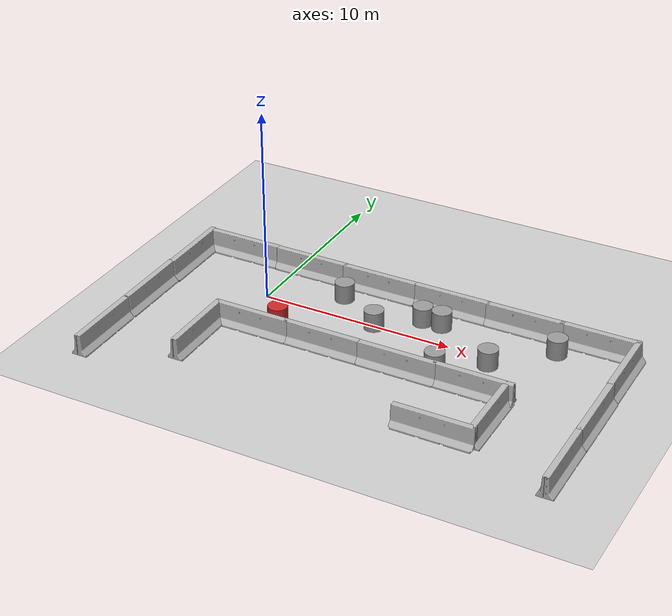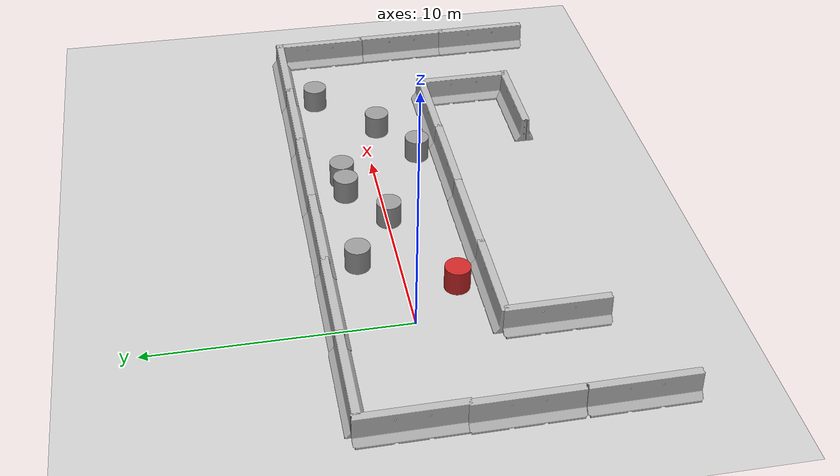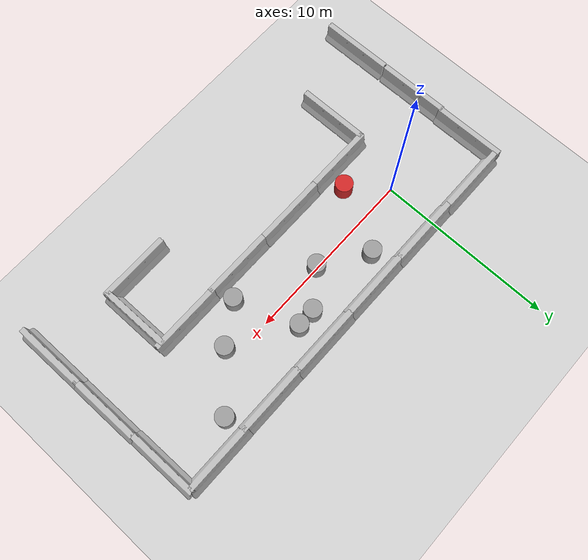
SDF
<sdf version="1.7">
 <world name="default">
  <model name="ground_plane">
   <static>1</static>
   <link name="link">
    <collision name="collision">
     <geometry><plane><normal>0 0 1</normal><size>100 100</size></plane></geometry>
     <surface><friction><ode><mu>100</mu><mu2>50</mu2></ode></friction></surface>
    </collision>
    <visual name="visual">
     <cast_shadows>0</cast_shadows>
     <geometry><plane><normal>0 0 1</normal><size>100 100</size></plane></geometry>
     <material>
      <script><uri>file://media/materials/scripts/gazebo.material</uri><name>Gazebo/Grey</name></script>
     </material>
    </visual>
   </link>
  </model>
  <model name="jersey_barrier">
   <static>1</static>
   <link name="link">
    <visual name="visual">
     <geometry><mesh><uri>model://jersey_barrier/meshes/jersey_barrier.dae</uri></mesh></geometry>
    </visual>
    <collision name="upright">
     <pose>0 0 0.5715 0 -0 0</pose>
     <geometry><box><size>4.06542 0.3063 1.143</size></box></geometry>
    </collision>
    <collision name="base">
     <pose>0 0 0.032258 0 -0 0</pose>
     <geometry><box><size>4.06542 0.8107 0.064516</size></box></geometry>
    </collision>
    <collision name="base2">
     <pose>0 0 0.1 0 -0 0</pose>
     <geometry><box><size>4.06542 0.65 0.1</size></box></geometry>
    </collision>
    <collision name="base3">
     <pose>0 0 0.2 0 -0 0</pose>
     <geometry><box><size>4.06542 0.5 0.1</size></box></geometry>
    </collision>
    <collision name="left-angle">
     <pose>0 -0.224 0.2401 0.9 -0 0</pose>
     <geometry><box><size>4.06542 0.5 0.064516</size></box></geometry>
    </collision>
    <collision name="right-angle">
     <pose>0 0.224 0.2401 -0.9 0 0</pose>
     <geometry><box><size>4.06542 0.5 0.064516</size></box></geometry>
    </collision>
   </link>
   <pose>0.961979 -3.04633 0 0 -0 0</pose>
  </model>
  <model name="jersey_barrier_clone">
   <static>1</static>
   <link name="link">
    <visual name="visual">
     <geometry><mesh><uri>model://jersey_barrier/meshes/jersey_barrier.dae</uri></mesh></geometry>
    </visual>
    <collision name="upright">
     <pose>0 0 0.5715 0 -0 0</pose>
     <geometry><box><size>4.06542 0.3063 1.143</size></box></geometry>
    </collision>
    <collision name="base">
     <pose>0 0 0.032258 0 -0 0</pose>
     <geometry><box><size>4.06542 0.8107 0.064516</size></box></geometry>
    </collision>
    <collision name="base2">
     <pose>0 0 0.1 0 -0 0</pose>
     <geometry><box><size>4.06542 0.65 0.1</size></box></geometry>
    </collision>
    <collision name="base3">
     <pose>0 0 0.2 0 -0 0</pose>
     <geometry><box><size>4.06542 0.5 0.1</size></box></geometry>
    </collision>
    <collision name="left-angle">
     <pose>0 -0.224 0.2401 0.9 -0 0</pose>
     <geometry><box><size>4.06542 0.5 0.064516</size></box></geometry>
    </collision>
    <collision name="right-angle">
     <pose>0 0.224 0.2401 -0.9 0 0</pose>
     <geometry><box><size>4.06542 0.5 0.064516</size></box></geometry>
    </collision>
   </link>
   <pose>0.967551 2.93921 0 0 -0 0</pose>
  </model>
  <model name="jersey_barrier_clone_0">
   <static>1</static>
   <link name="link">
    <visual name="visual">
     <geometry><mesh><uri>model://jersey_barrier/meshes/jersey_barrier.dae</uri></mesh></geometry>
    </visual>
    <collision name="upright">
     <pose>0 0 0.5715 0 -0 0</pose>
     <geometry><box><size>4.06542 0.3063 1.143</size></box></geometry>
    </collision>
    <collision name="base">
     <pose>0 0 0.032258 0 -0 0</pose>
     <geometry><box><size>4.06542 0.8107 0.064516</size></box></geometry>
    </collision>
    <collision name="base2">
     <pose>0 0 0.1 0 -0 0</pose>
     <geometry><box><size>4.06542 0.65 0.1</size></box></geometry>
    </collision>
    <collision name="base3">
     <pose>0 0 0.2 0 -0 0</pose>
     <geometry><box><size>4.06542 0.5 0.1</size></box></geometry>
    </collision>
    <collision name="left-angle">
     <pose>0 -0.224 0.2401 0.9 -0 0</pose>
     <geometry><box><size>4.06542 0.5 0.064516</size></box></geometry>
    </collision>
    <collision name="right-angle">
     <pose>0 0.224 0.2401 -0.9 0 0</pose>
     <geometry><box><size>4.06542 0.5 0.064516</size></box></geometry>
    </collision>
   </link>
   <pose>4.82459 2.91753 0 0 -0 0</pose>
  </model>
  <model name="jersey_barrier_clone_1">
   <static>1</static>
   <link name="link">
    <visual name="visual">
     <geometry><mesh><uri>model://jersey_barrier/meshes/jersey_barrier.dae</uri></mesh></geometry>
    </visual>
    <collision name="upright">
     <pose>0 0 0.5715 0 -0 0</pose>
     <geometry><box><size>4.06542 0.3063 1.143</size></box></geometry>
    </collision>
    <collision name="base">
     <pose>0 0 0.032258 0 -0 0</pose>
     <geometry><box><size>4.06542 0.8107 0.064516</size></box></geometry>
    </collision>
    <collision name="base2">
     <pose>0 0 0.1 0 -0 0</pose>
     <geometry><box><size>4.06542 0.65 0.1</size></box></geometry>
    </collision>
    <collision name="base3">
     <pose>0 0 0.2 0 -0 0</pose>
     <geometry><box><size>4.06542 0.5 0.1</size></box></geometry>
    </collision>
    <collision name="left-angle">
     <pose>0 -0.224 0.2401 0.9 -0 0</pose>
     <geometry><box><size>4.06542 0.5 0.064516</size></box></geometry>
    </collision>
    <collision name="right-angle">
     <pose>0 0.224 0.2401 -0.9 0 0</pose>
     <geometry><box><size>4.06542 0.5 0.064516</size></box></geometry>
    </collision>
   </link>
   <pose>4.81555 -3.02808 0 0 -0 0</pose>
  </model>
  <model name="jersey_barrier_clone_2">
   <static>1</static>
   <link name="link">
    <visual name="visual">
     <geometry><mesh><uri>model://jersey_barrier/meshes/jersey_barrier.dae</uri></mesh></geometry>
    </visual>
    <collision name="upright">
     <pose>0 0 0.5715 0 -0 0</pose>
     <geometry><box><size>4.06542 0.3063 1.143</size></box></geometry>
    </collision>
    <collision name="base">
     <pose>0 0 0.032258 0 -0 0</pose>
     <geometry><box><size>4.06542 0.8107 0.064516</size></box></geometry>
    </collision>
    <collision name="base2">
     <pose>0 0 0.1 0 -0 0</pose>
     <geometry><box><size>4.06542 0.65 0.1</size></box></geometry>
    </collision>
    <collision name="base3">
     <pose>0 0 0.2 0 -0 0</pose>
     <geometry><box><size>4.06542 0.5 0.1</size></box></geometry>
    </collision>
    <collision name="left-angle">
     <pose>0 -0.224 0.2401 0.9 -0 0</pose>
     <geometry><box><size>4.06542 0.5 0.064516</size></box></geometry>
    </collision>
    <collision name="right-angle">
     <pose>0 0.224 0.2401 -0.9 0 0</pose>
     <geometry><box><size>4.06542 0.5 0.064516</size></box></geometry>
    </collision>
   </link>
   <pose>8.7951 -3.03853 0 0 -0 0</pose>
  </model>
  <model name="jersey_barrier_clone_3">
   <static>1</static>
   <link name="link">
    <visual name="visual">
     <geometry><mesh><uri>model://jersey_barrier/meshes/jersey_barrier.dae</uri></mesh></geometry>
    </visual>
    <collision name="upright">
     <pose>0 0 0.5715 0 -0 0</pose>
     <geometry><box><size>4.06542 0.3063 1.143</size></box></geometry>
    </collision>
    <collision name="base">
     <pose>0 0 0.032258 0 -0 0</pose>
     <geometry><box><size>4.06542 0.8107 0.064516</size></box></geometry>
    </collision>
    <collision name="base2">
     <pose>0 0 0.1 0 -0 0</pose>
     <geometry><box><size>4.06542 0.65 0.1</size></box></geometry>
    </collision>
    <collision name="base3">
     <pose>0 0 0.2 0 -0 0</pose>
     <geometry><box><size>4.06542 0.5 0.1</size></box></geometry>
    </collision>
    <collision name="left-angle">
     <pose>0 -0.224 0.2401 0.9 -0 0</pose>
     <geometry><box><size>4.06542 0.5 0.064516</size></box></geometry>
    </collision>
    <collision name="right-angle">
     <pose>0 0.224 0.2401 -0.9 0 0</pose>
     <geometry><box><size>4.06542 0.5 0.064516</size></box></geometry>
    </collision>
   </link>
   <pose>8.79888 2.92982 0 0 -0 0</pose>
  </model>
  <model name="jersey_barrier_clone_4">
   <static>1</static>
   <link name="link">
    <visual name="visual">
     <geometry><mesh><uri>model://jersey_barrier/meshes/jersey_barrier.dae</uri></mesh></geometry>
    </visual>
    <collision name="upright">
     <pose>0 0 0.5715 0 -0 0</pose>
     <geometry><box><size>4.06542 0.3063 1.143</size></box></geometry>
    </collision>
    <collision name="base">
     <pose>0 0 0.032258 0 -0 0</pose>
     <geometry><box><size>4.06542 0.8107 0.064516</size></box></geometry>
    </collision>
    <collision name="base2">
     <pose>0 0 0.1 0 -0 0</pose>
     <geometry><box><size>4.06542 0.65 0.1</size></box></geometry>
    </collision>
    <collision name="base3">
     <pose>0 0 0.2 0 -0 0</pose>
     <geometry><box><size>4.06542 0.5 0.1</size></box></geometry>
    </collision>
    <collision name="left-angle">
     <pose>0 -0.224 0.2401 0.9 -0 0</pose>
     <geometry><box><size>4.06542 0.5 0.064516</size></box></geometry>
    </collision>
    <collision name="right-angle">
     <pose>0 0.224 0.2401 -0.9 0 0</pose>
     <geometry><box><size>4.06542 0.5 0.064516</size></box></geometry>
    </collision>
   </link>
   <pose>-3.01908 2.96805 0 0 -0 0</pose>
  </model>
  <model name="jersey_barrier_clone_5">
   <static>1</static>
   <link name="link">
    <visual name="visual">
     <geometry><mesh><uri>model://jersey_barrier/meshes/jersey_barrier.dae</uri></mesh></geometry>
    </visual>
    <collision name="upright">
     <pose>0 0 0.5715 0 -0 0</pose>
     <geometry><box><size>4.06542 0.3063 1.143</size></box></geometry>
    </collision>
    <collision name="base">
     <pose>0 0 0.032258 0 -0 0</pose>
     <geometry><box><size>4.06542 0.8107 0.064516</size></box></geometry>
    </collision>
    <collision name="base2">
     <pose>0 0 0.1 0 -0 0</pose>
     <geometry><box><size>4.06542 0.65 0.1</size></box></geometry>
    </collision>
    <collision name="base3">
     <pose>0 0 0.2 0 -0 0</pose>
     <geometry><box><size>4.06542 0.5 0.1</size></box></geometry>
    </collision>
    <collision name="left-angle">
     <pose>0 -0.224 0.2401 0.9 -0 0</pose>
     <geometry><box><size>4.06542 0.5 0.064516</size></box></geometry>
    </collision>
    <collision name="right-angle">
     <pose>0 0.224 0.2401 -0.9 0 0</pose>
     <geometry><box><size>4.06542 0.5 0.064516</size></box></geometry>
    </collision>
   </link>
   <pose>-5.09144 1.13945 0 0 -0 1.58011</pose>
  </model>
  <model name="jersey_barrier_clone_5_clone">
   <static>1</static>
   <link name="link">
    <visual name="visual">
     <geometry><mesh><uri>model://jersey_barrier/meshes/jersey_barrier.dae</uri></mesh></geometry>
    </visual>
    <collision name="upright">
     <pose>0 0 0.5715 0 -0 0</pose>
     <geometry><box><size>4.06542 0.3063 1.143</size></box></geometry>
    </collision>
    <collision name="base">
     <pose>0 0 0.032258 0 -0 0</pose>
     <geometry><box><size>4.06542 0.8107 0.064516</size></box></geometry>
    </collision>
    <collision name="base2">
     <pose>0 0 0.1 0 -0 0</pose>
     <geometry><box><size>4.06542 0.65 0.1</size></box></geometry>
    </collision>
    <collision name="base3">
     <pose>0 0 0.2 0 -0 0</pose>
     <geometry><box><size>4.06542 0.5 0.1</size></box></geometry>
    </collision>
    <collision name="left-angle">
     <pose>0 -0.224 0.2401 0.9 -0 0</pose>
     <geometry><box><size>4.06542 0.5 0.064516</size></box></geometry>
    </collision>
    <collision name="right-angle">
     <pose>0 0.224 0.2401 -0.9 0 0</pose>
     <geometry><box><size>4.06542 0.5 0.064516</size></box></geometry>
    </collision>
   </link>
   <pose>-5.11044 -2.76569 0 0 -0 1.58011</pose>
  </model>
  <model name="jersey_barrier_clone_5_clone_0">
   <static>1</static>
   <link name="link">
    <visual name="visual">
     <geometry><mesh><uri>model://jersey_barrier/meshes/jersey_barrier.dae</uri></mesh></geometry>
    </visual>
    <collision name="upright">
     <pose>0 0 0.5715 0 -0 0</pose>
     <geometry><box><size>4.06542 0.3063 1.143</size></box></geometry>
    </collision>
    <collision name="base">
     <pose>0 0 0.032258 0 -0 0</pose>
     <geometry><box><size>4.06542 0.8107 0.064516</size></box></geometry>
    </collision>
    <collision name="base2">
     <pose>0 0 0.1 0 -0 0</pose>
     <geometry><box><size>4.06542 0.65 0.1</size></box></geometry>
    </collision>
    <collision name="base3">
     <pose>0 0 0.2 0 -0 0</pose>
     <geometry><box><size>4.06542 0.5 0.1</size></box></geometry>
    </collision>
    <collision name="left-angle">
     <pose>0 -0.224 0.2401 0.9 -0 0</pose>
     <geometry><box><size>4.06542 0.5 0.064516</size></box></geometry>
    </collision>
    <collision name="right-angle">
     <pose>0 0.224 0.2401 -0.9 0 0</pose>
     <geometry><box><size>4.06542 0.5 0.064516</size></box></geometry>
    </collision>
   </link>
   <pose>-0.916809 -4.99629 0 0 -0 1.58011</pose>
  </model>
  <model name="jersey_barrier_clone_5_clone_1">
   <static>1</static>
   <link name="link">
    <visual name="visual">
     <geometry><mesh><uri>model://jersey_barrier/meshes/jersey_barrier.dae</uri></mesh></geometry>
    </visual>
    <collision name="upright">
     <pose>0 0 0.5715 0 -0 0</pose>
     <geometry><box><size>4.06542 0.3063 1.143</size></box></geometry>
    </collision>
    <collision name="base">
     <pose>0 0 0.032258 0 -0 0</pose>
     <geometry><box><size>4.06542 0.8107 0.064516</size></box></geometry>
    </collision>
    <collision name="base2">
     <pose>0 0 0.1 0 -0 0</pose>
     <geometry><box><size>4.06542 0.65 0.1</size></box></geometry>
    </collision>
    <collision name="base3">
     <pose>0 0 0.2 0 -0 0</pose>
     <geometry><box><size>4.06542 0.5 0.1</size></box></geometry>
    </collision>
    <collision name="left-angle">
     <pose>0 -0.224 0.2401 0.9 -0 0</pose>
     <geometry><box><size>4.06542 0.5 0.064516</size></box></geometry>
    </collision>
    <collision name="right-angle">
     <pose>0 0.224 0.2401 -0.9 0 0</pose>
     <geometry><box><size>4.06542 0.5 0.064516</size></box></geometry>
    </collision>
   </link>
   <pose>-5.07736 -6.85256 0 0 -0 1.58011</pose>
  </model>
  <model name="jersey_barrier_clone_13">
   <static>1</static>
   <link name="link">
    <visual name="visual">
     <geometry><mesh><uri>model://jersey_barrier/meshes/jersey_barrier.dae</uri></mesh></geometry>
    </visual>
    <collision name="upright">
     <pose>0 0 0.5715 0 -0 0</pose>
     <geometry><box><size>4.06542 0.3063 1.143</size></box></geometry>
    </collision>
    <collision name="base">
     <pose>0 0 0.032258 0 -0 0</pose>
     <geometry><box><size>4.06542 0.8107 0.064516</size></box></geometry>
    </collision>
    <collision name="base2">
     <pose>0 0 0.1 0 -0 0</pose>
     <geometry><box><size>4.06542 0.65 0.1</size></box></geometry>
    </collision>
    <collision name="base3">
     <pose>0 0 0.2 0 -0 0</pose>
     <geometry><box><size>4.06542 0.5 0.1</size></box></geometry>
    </collision>
    <collision name="left-angle">
     <pose>0 -0.224 0.2401 0.9 -0 0</pose>
     <geometry><box><size>4.06542 0.5 0.064516</size></box></geometry>
    </collision>
    <collision name="right-angle">
     <pose>0 0.224 0.2401 -0.9 0 0</pose>
     <geometry><box><size>4.06542 0.5 0.064516</size></box></geometry>
    </collision>
   </link>
   <pose>12.6356 -3.0156 0 0 -0 0</pose>
  </model>
  <model name="jersey_barrier_clone_14">
   <static>1</static>
   <link name="link">
    <visual name="visual">
     <geometry><mesh><uri>model://jersey_barrier/meshes/jersey_barrier.dae</uri></mesh></geometry>
    </visual>
    <collision name="upright">
     <pose>0 0 0.5715 0 -0 0</pose>
     <geometry><box><size>4.06542 0.3063 1.143</size></box></geometry>
    </collision>
    <collision name="base">
     <pose>0 0 0.032258 0 -0 0</pose>
     <geometry><box><size>4.06542 0.8107 0.064516</size></box></geometry>
    </collision>
    <collision name="base2">
     <pose>0 0 0.1 0 -0 0</pose>
     <geometry><box><size>4.06542 0.65 0.1</size></box></geometry>
    </collision>
    <collision name="base3">
     <pose>0 0 0.2 0 -0 0</pose>
     <geometry><box><size>4.06542 0.5 0.1</size></box></geometry>
    </collision>
    <collision name="left-angle">
     <pose>0 -0.224 0.2401 0.9 -0 0</pose>
     <geometry><box><size>4.06542 0.5 0.064516</size></box></geometry>
    </collision>
    <collision name="right-angle">
     <pose>0 0.224 0.2401 -0.9 0 0</pose>
     <geometry><box><size>4.06542 0.5 0.064516</size></box></geometry>
    </collision>
   </link>
   <pose>12.6866 2.91624 0 0 -0 0</pose>
  </model>
  <model name="jersey_barrier_clone_15">
   <static>1</static>
   <link name="link">
    <visual name="visual">
     <geometry><mesh><uri>model://jersey_barrier/meshes/jersey_barrier.dae</uri></mesh></geometry>
    </visual>
    <collision name="upright">
     <pose>0 0 0.5715 0 -0 0</pose>
     <geometry><box><size>4.06542 0.3063 1.143</size></box></geometry>
    </collision>
    <collision name="base">
     <pose>0 0 0.032258 0 -0 0</pose>
     <geometry><box><size>4.06542 0.8107 0.064516</size></box></geometry>
    </collision>
    <collision name="base2">
     <pose>0 0 0.1 0 -0 0</pose>
     <geometry><box><size>4.06542 0.65 0.1</size></box></geometry>
    </collision>
    <collision name="base3">
     <pose>0 0 0.2 0 -0 0</pose>
     <geometry><box><size>4.06542 0.5 0.1</size></box></geometry>
    </collision>
    <collision name="left-angle">
     <pose>0 -0.224 0.2401 0.9 -0 0</pose>
     <geometry><box><size>4.06542 0.5 0.064516</size></box></geometry>
    </collision>
    <collision name="right-angle">
     <pose>0 0.224 0.2401 -0.9 0 0</pose>
     <geometry><box><size>4.06542 0.5 0.064516</size></box></geometry>
    </collision>
   </link>
   <pose>12.4897 -6.82928 0 0 -0 0</pose>
  </model>
  <model name="jersey_barrier_clone_5_clone_clone">
   <static>1</static>
   <link name="link">
    <visual name="visual">
     <geometry><mesh><uri>model://jersey_barrier/meshes/jersey_barrier.dae</uri></mesh></geometry>
    </visual>
    <collision name="upright">
     <pose>0 0 0.5715 0 -0 0</pose>
     <geometry><box><size>4.06542 0.3063 1.143</size></box></geometry>
    </collision>
    <collision name="base">
     <pose>0 0 0.032258 0 -0 0</pose>
     <geometry><box><size>4.06542 0.8107 0.064516</size></box></geometry>
    </collision>
    <collision name="base2">
     <pose>0 0 0.1 0 -0 0</pose>
     <geometry><box><size>4.06542 0.65 0.1</size></box></geometry>
    </collision>
    <collision name="base3">
     <pose>0 0 0.2 0 -0 0</pose>
     <geometry><box><size>4.06542 0.5 0.1</size></box></geometry>
    </collision>
    <collision name="left-angle">
     <pose>0 -0.224 0.2401 0.9 -0 0</pose>
     <geometry><box><size>4.06542 0.5 0.064516</size></box></geometry>
    </collision>
    <collision name="right-angle">
     <pose>0 0.224 0.2401 -0.9 0 0</pose>
     <geometry><box><size>4.06542 0.5 0.064516</size></box></geometry>
    </collision>
   </link>
   <pose>14.3041 -4.91482 0 0 -0 1.58011</pose>
  </model>
  <model name="jersey_barrier_clone_13_clone">
   <static>1</static>
   <link name="link">
    <visual name="visual">
     <geometry><mesh><uri>model://jersey_barrier/meshes/jersey_barrier.dae</uri></mesh></geometry>
    </visual>
    <collision name="upright">
     <pose>0 0 0.5715 0 -0 0</pose>
     <geometry><box><size>4.06542 0.3063 1.143</size></box></geometry>
    </collision>
    <collision name="base">
     <pose>0 0 0.032258 0 -0 0</pose>
     <geometry><box><size>4.06542 0.8107 0.064516</size></box></geometry>
    </collision>
    <collision name="base2">
     <pose>0 0 0.1 0 -0 0</pose>
     <geometry><box><size>4.06542 0.65 0.1</size></box></geometry>
    </collision>
    <collision name="base3">
     <pose>0 0 0.2 0 -0 0</pose>
     <geometry><box><size>4.06542 0.5 0.1</size></box></geometry>
    </collision>
    <collision name="left-angle">
     <pose>0 -0.224 0.2401 0.9 -0 0</pose>
     <geometry><box><size>4.06542 0.5 0.064516</size></box></geometry>
    </collision>
    <collision name="right-angle">
     <pose>0 0.224 0.2401 -0.9 0 0</pose>
     <geometry><box><size>4.06542 0.5 0.064516</size></box></geometry>
    </collision>
   </link>
   <pose>16.4679 2.92998 0 0 -0 0</pose>
  </model>
  <model name="jersey_barrier_clone_5_clone_clone_clone">
   <static>1</static>
   <link name="link">
    <visual name="visual">
     <geometry><mesh><uri>model://jersey_barrier/meshes/jersey_barrier.dae</uri></mesh></geometry>
    </visual>
    <collision name="upright">
     <pose>0 0 0.5715 0 -0 0</pose>
     <geometry><box><size>4.06542 0.3063 1.143</size></box></geometry>
    </collision>
    <collision name="base">
     <pose>0 0 0.032258 0 -0 0</pose>
     <geometry><box><size>4.06542 0.8107 0.064516</size></box></geometry>
    </collision>
    <collision name="base2">
     <pose>0 0 0.1 0 -0 0</pose>
     <geometry><box><size>4.06542 0.65 0.1</size></box></geometry>
    </collision>
    <collision name="base3">
     <pose>0 0 0.2 0 -0 0</pose>
     <geometry><box><size>4.06542 0.5 0.1</size></box></geometry>
    </collision>
    <collision name="left-angle">
     <pose>0 -0.224 0.2401 0.9 -0 0</pose>
     <geometry><box><size>4.06542 0.5 0.064516</size></box></geometry>
    </collision>
    <collision name="right-angle">
     <pose>0 0.224 0.2401 -0.9 0 0</pose>
     <geometry><box><size>4.06542 0.5 0.064516</size></box></geometry>
    </collision>
   </link>
   <pose>18.3775 1.0886 0 0 -0 1.58011</pose>
  </model>
  <model name="jersey_barrier_clone_5_clone_clone_clone_0">
   <static>1</static>
   <link name="link">
    <visual name="visual">
     <geometry><mesh><uri>model://jersey_barrier/meshes/jersey_barrier.dae</uri></mesh></geometry>
    </visual>
    <collision name="upright">
     <pose>0 0 0.5715 0 -0 0</pose>
     <geometry><box><size>4.06542 0.3063 1.143</size></box></geometry>
    </collision>
    <collision name="base">
     <pose>0 0 0.032258 0 -0 0</pose>
     <geometry><box><size>4.06542 0.8107 0.064516</size></box></geometry>
    </collision>
    <collision name="base2">
     <pose>0 0 0.1 0 -0 0</pose>
     <geometry><box><size>4.06542 0.65 0.1</size></box></geometry>
    </collision>
    <collision name="base3">
     <pose>0 0 0.2 0 -0 0</pose>
     <geometry><box><size>4.06542 0.5 0.1</size></box></geometry>
    </collision>
    <collision name="left-angle">
     <pose>0 -0.224 0.2401 0.9 -0 0</pose>
     <geometry><box><size>4.06542 0.5 0.064516</size></box></geometry>
    </collision>
    <collision name="right-angle">
     <pose>0 0.224 0.2401 -0.9 0 0</pose>
     <geometry><box><size>4.06542 0.5 0.064516</size></box></geometry>
    </collision>
   </link>
   <pose>18.4419 -2.8308 0 0 -0 1.58011</pose>
  </model>
  <model name="jersey_barrier_clone_5_clone_clone_clone_1">
   <static>1</static>
   <link name="link">
    <visual name="visual">
     <geometry><mesh><uri>model://jersey_barrier/meshes/jersey_barrier.dae</uri></mesh></geometry>
    </visual>
    <collision name="upright">
     <pose>0 0 0.5715 0 -0 0</pose>
     <geometry><box><size>4.06542 0.3063 1.143</size></box></geometry>
    </collision>
    <collision name="base">
     <pose>0 0 0.032258 0 -0 0</pose>
     <geometry><box><size>4.06542 0.8107 0.064516</size></box></geometry>
    </collision>
    <collision name="base2">
     <pose>0 0 0.1 0 -0 0</pose>
     <geometry><box><size>4.06542 0.65 0.1</size></box></geometry>
    </collision>
    <collision name="base3">
     <pose>0 0 0.2 0 -0 0</pose>
     <geometry><box><size>4.06542 0.5 0.1</size></box></geometry>
    </collision>
    <collision name="left-angle">
     <pose>0 -0.224 0.2401 0.9 -0 0</pose>
     <geometry><box><size>4.06542 0.5 0.064516</size></box></geometry>
    </collision>
    <collision name="right-angle">
     <pose>0 0.224 0.2401 -0.9 0 0</pose>
     <geometry><box><size>4.06542 0.5 0.064516</size></box></geometry>
    </collision>
   </link>
   <pose>18.468 -6.63455 0 0 -0 1.58011</pose>
  </model>
  <model name="unit_cylinder_clone">
   <pose>3.53776 1.60009 0.499998 3e-06 -4e-06 0</pose>
   <link name="link">
    <inertial>
     <mass>1</mass>
     <inertia><ixx>0.145833</ixx><ixy>0</ixy><ixz>0</ixz><iyy>0.145833</iyy><iyz>0</iyz><izz>0.125</izz></inertia>
    </inertial>
    <collision name="collision">
     <geometry><cylinder><radius>0.5</radius><length>1</length></cylinder></geometry>
    </collision>
    <visual name="visual">
     <geometry><cylinder><radius>0.5</radius><length>1</length></cylinder></geometry>
     <material>
      <script><name>Gazebo/Grey</name><uri>file://media/materials/scripts/gazebo.material</uri></script>
     </material>
    </visual>
   </link>
  </model>
  <model name="unit_cylinder_clone_0">
   <pose>6.03178 -0.051458 0.499992 -3e-06 -4e-06 -0</pose>
   <link name="link">
    <inertial>
     <mass>1</mass>
     <inertia><ixx>0.145833</ixx><ixy>0</ixy><ixz>0</ixz><iyy>0.145833</iyy><iyz>0</iyz><izz>0.125</izz></inertia>
    </inertial>
    <collision name="collision">
     <geometry><cylinder><radius>0.5</radius><length>1</length></cylinder></geometry>
    </collision>
    <visual name="visual">
     <geometry><cylinder><radius>0.5</radius><length>1</length></cylinder></geometry>
     <material>
      <script><name>Gazebo/Grey</name><uri>file://media/materials/scripts/gazebo.material</uri></script>
     </material>
    </visual>
   </link>
  </model>
  <model name="unit_cylinder_clone_1">
   <pose>7.9556 1.3951 0.499998 3e-06 -4e-06 0</pose>
   <link name="link">
    <inertial>
     <mass>1</mass>
     <inertia><ixx>0.145833</ixx><ixy>0</ixy><ixz>0</ixz><iyy>0.145833</iyy><iyz>0</iyz><izz>0.125</izz></inertia>
    </inertial>
    <collision name="collision">
     <geometry><cylinder><radius>0.5</radius><length>1</length></cylinder></geometry>
    </collision>
    <visual name="visual">
     <geometry><cylinder><radius>0.5</radius><length>1</length></cylinder></geometry>
     <material>
      <script><name>Gazebo/Grey</name><uri>file://media/materials/scripts/gazebo.material</uri></script>
     </material>
    </visual>
   </link>
  </model>
  <model name="unit_cylinder_clone_2">
   <pose>10.2203 -1.99894 0.499993 -3e-06 -3e-06 0</pose>
   <link name="link">
    <inertial>
     <mass>1</mass>
     <inertia><ixx>0.145833</ixx><ixy>0</ixy><ixz>0</ixz><iyy>0.145833</iyy><iyz>0</iyz><izz>0.125</izz></inertia>
    </inertial>
    <collision name="collision">
     <geometry><cylinder><radius>0.5</radius><length>1</length></cylinder></geometry>
    </collision>
    <visual name="visual">
     <geometry><cylinder><radius>0.5</radius><length>1</length></cylinder></geometry>
     <material>
      <script><name>Gazebo/Grey</name><uri>file://media/materials/scripts/gazebo.material</uri></script>
     </material>
    </visual>
   </link>
  </model>
  <model name="unit_cylinder_clone_3">
   <pose>8.9727 1.40949 0.499998 3e-06 -4e-06 0</pose>
   <link name="link">
    <inertial>
     <mass>1</mass>
     <inertia><ixx>0.145833</ixx><ixy>0</ixy><ixz>0</ixz><iyy>0.145833</iyy><iyz>0</iyz><izz>0.125</izz></inertia>
    </inertial>
    <collision name="collision">
     <geometry><cylinder><radius>0.5</radius><length>1</length></cylinder></geometry>
    </collision>
    <visual name="visual">
     <geometry><cylinder><radius>0.5</radius><length>1</length></cylinder></geometry>
     <material>
      <script><name>Gazebo/Grey</name><uri>file://media/materials/scripts/gazebo.material</uri></script>
     </material>
    </visual>
   </link>
  </model>
  <model name="unit_cylinder_clone_4">
   <pose>12.3131 -0.616252 0.499997 3e-06 -4e-06 0</pose>
   <link name="link">
    <inertial>
     <mass>1</mass>
     <inertia><ixx>0.145833</ixx><ixy>0</ixy><ixz>0</ixz><iyy>0.145833</iyy><iyz>0</iyz><izz>0.125</izz></inertia>
    </inertial>
    <collision name="collision">
     <geometry><cylinder><radius>0.5</radius><length>1</length></cylinder></geometry>
    </collision>
    <visual name="visual">
     <geometry><cylinder><radius>0.5</radius><length>1</length></cylinder></geometry>
     <material>
      <script><name>Gazebo/Grey</name><uri>file://media/materials/scripts/gazebo.material</uri></script>
     </material>
    </visual>
   </link>
  </model>
  <model name="unit_cylinder_clone_5">
   <pose>14.8057 1.77662 0.499998 3e-06 -4e-06 0</pose>
   <link name="link">
    <inertial>
     <mass>1</mass>
     <inertia><ixx>0.145833</ixx><ixy>0</ixy><ixz>0</ixz><iyy>0.145833</iyy><iyz>0</iyz><izz>0.125</izz></inertia>
    </inertial>
    <collision name="collision">
     <geometry><cylinder><radius>0.5</radius><length>1</length></cylinder></geometry>
    </collision>
    <visual name="visual">
     <geometry><cylinder><radius>0.5</radius><length>1</length></cylinder></geometry>
     <material>
      <script><name>Gazebo/Grey</name><uri>file://media/materials/scripts/gazebo.material</uri></script>
     </material>
    </visual>
   </link>
  </model>
  <model name="Red_cylinder">
   <link name="link">
    <inertial>
     <mass>1</mass>
     <inertia><ixx>0.145833</ixx><ixy>0</ixy><ixz>0</ixz><iyy>0.145833</iyy><iyz>0</iyz><izz>0.125</izz></inertia>
    </inertial>
    <visual name="visual">
     <geometry><cylinder><radius>0.5</radius><length>1</length></cylinder></geometry>
     <material>
      <script><name>Gazebo/Red</name><uri>file://media/materials/scripts/gazebo.material</uri></script>
      <shader type="pixel"><normal_map>__default__</normal_map></shader>
      <ambient>0.3 0.3 0.3 1</ambient>
      <diffuse>0.7 0.7 0.7 1</diffuse>
      <specular>0.01 0.01 0.01 1</specular>
      <emissive>0 0 0 1</emissive>
     </material>
    </visual>
    <collision name="collision">
     <geometry><cylinder><radius>0.5</radius><length>1</length></cylinder></geometry>
     <surface>
      <friction>
       <ode><mu>1</mu><mu2>1</mu2><fdir1>0 0 0</fdir1><slip1>0</slip1><slip2>0</slip2></ode>
       <torsional>
        <coefficient>1</coefficient>
        <patch_radius>0</patch_radius>
        <surface_radius>0</surface_radius>
        <use_patch_radius>1</use_patch_radius>
        <ode><slip>0</slip></ode>
       </torsional>
      </friction>
      <bounce><restitution_coefficient>0</restitution_coefficient><threshold>1e+06</threshold></bounce>
      <contact>
       <collide_without_contact>0</collide_without_contact>
       <collide_without_contact_bitmask>1</collide_without_contact_bitmask>
       <collide_bitmask>1</collide_bitmask>
       <ode>
        <soft_cfm>0</soft_cfm>
        <soft_erp>0.2</soft_erp>
        <kp>1e+13</kp>
        <kd>1</kd>
        <max_vel>0.01</max_vel>
        <min_depth>0</min_depth>
       </ode>
       <bullet>
        <split_impulse>1</split_impulse>
        <split_impulse_penetration_threshold>-0.01</split_impulse_penetration_threshold>
        <soft_cfm>0</soft_cfm>
        <soft_erp>0.2</soft_erp>
        <kp>1e+13</kp>
        <kd>1</kd>
       </bullet>
      </contact>
     </surface>
    </collision>
   </link>
   <static>0</static>
   <pose>1.74284 -1.9058 0.499992 -3e-06 -4e-06 -0</pose>
  </model>
 </world>
</sdf>
